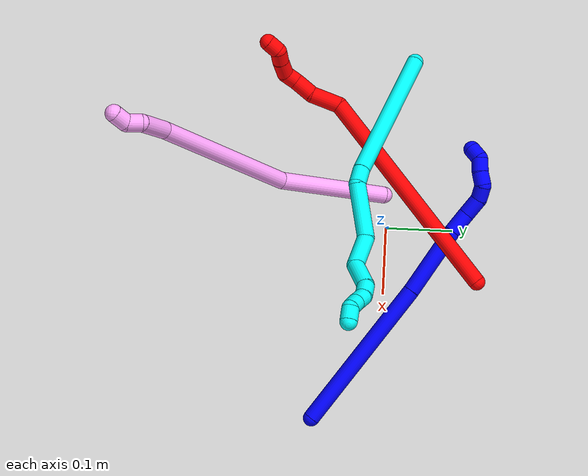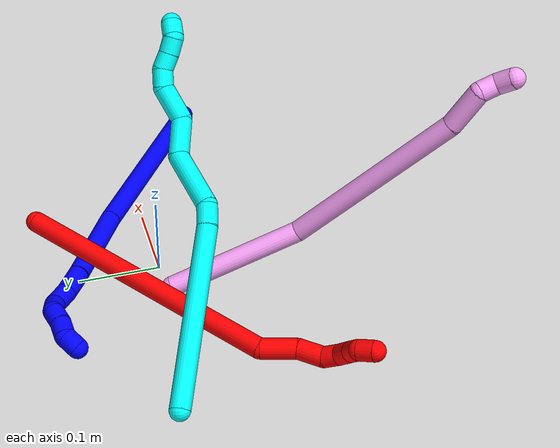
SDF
<sdf version="1.7">
 <world name="default">
  <plugin name="TubeGeneratorPlugin" filename="libtube_generator_plugin.so"/>
  <model name="photoneo_s_sensor">
   <static>1</static>
   <pose>0 0 2 1.57079 1.57079 3.14159</pose>
   <link name="link">
    <inertial><mass>0.1</mass></inertial>
    <sensor name="sensor" type="depth">
     <update_rate>30</update_rate>
     <camera>
      <horizontal_fov>1.22</horizontal_fov>
      <image><width>1920</width><height>1200</height><format>B8G8R8</format></image>
      <clip><near>0.1</near><far>4</far></clip>
      <depth_camera><output>points</output></depth_camera>
     </camera>
     <plugin name="camera_plugin" filename="libgazebo_ros_depth_camera.so">
      <baseline>0.2</baseline>
      <alwaysOn>1</alwaysOn>
      <updateRate>0.0</updateRate>
      <cameraName>camera_ir</cameraName>
      <imageTopicName>/camera/color/image_raw</imageTopicName>
      <cameraInfoTopicName>/camera/color/camera_info</cameraInfoTopicName>
      <depthImageTopicName>/camera/depth/image_raw</depthImageTopicName>
      <depthImageCameraInfoTopicName>/camera/depth/camera_info</depthImageCameraInfoTopicName>
      <pointCloudTopicName>/camera/depth/points</pointCloudTopicName>
      <frameName>fr_optical</frameName>
      <pointCloudCutoff>0.1</pointCloudCutoff>
      <pointCloudCutoffMax>2.0</pointCloudCutoffMax>
      <distortionK1>0</distortionK1>
      <distortionK2>0</distortionK2>
      <distortionK3>0</distortionK3>
      <distortionT1>0</distortionT1>
      <distortionT2>0</distortionT2>
      <CxPrime>0</CxPrime>
      <Cx>0</Cx>
      <Cy>0</Cy>
      <focalLength>0</focalLength>
      <hackBaseline>0</hackBaseline>
     </plugin>
    </sensor>
   </link>
  </model>
  <gravity>0 0 -9.8</gravity>
  <magnetic_field>6e-06 2.3e-05 -4.2e-05</magnetic_field>
  <atmosphere type="adiabatic"/>
  <physics name="default_physics" default="0" type="ode">
   <max_step_size>0.003</max_step_size>
   <real_time_factor>1</real_time_factor>
   <real_time_update_rate>1000</real_time_update_rate>
   <max_contacts>10000</max_contacts>
   <ode>
    <solver>
     <type>quick</type>
     <iters>100</iters>
     <sor>1.3</sor>
     <use_dynamic_moi_rescaling>0</use_dynamic_moi_rescaling>
    </solver>
    <constraints>
     <contact_max_correcting_vel>0</contact_max_correcting_vel>
     <contact_surface_layer>0.001</contact_surface_layer>
     <cfm>0</cfm>
     <erp>0.2</erp>
    </constraints>
   </ode>
  </physics>
  <scene><ambient>0.4 0.4 0.4 1</ambient><background>0.7 0.7 0.7 1</background><shadows>0</shadows></scene>
  <audio><device>default</device></audio>
  <spherical_coordinates>
   <surface_model>EARTH_WGS84</surface_model>
   <latitude_deg>0</latitude_deg>
   <longitude_deg>0</longitude_deg>
   <elevation>0</elevation>
   <heading_deg>0</heading_deg>
  </spherical_coordinates>
  <model name="bin">
   <static>1</static>
   <link name="bottom">
    <collision name="collision-bottom">
     <pose>0 0 -0.01 0 -0 0</pose>
     <geometry><box><size>0.8 0.6 0.02</size></box></geometry>
     <surface>
      <friction><ode><mu>100</mu><mu2>100</mu2></ode></friction>
      <contact><collide_bitmask>65535</collide_bitmask></contact>
     </surface>
    </collision>
   </link>
   <link name="west_wall">
    <collision name="collision-west_wall">
     <pose>-0.41 0 0.1 0 -0 0</pose>
     <geometry><box><size>0.02 0.6 0.2</size></box></geometry>
     <surface>
      <friction><ode><mu>100</mu><mu2>100</mu2></ode></friction>
      <contact><collide_bitmask>65535</collide_bitmask></contact>
     </surface>
    </collision>
   </link>
   <link name="east_wall">
    <collision name="collision-east_wall">
     <pose>0.41 0 0.1 0 -0 0</pose>
     <geometry><box><size>0.02 0.6 0.2</size></box></geometry>
     <surface>
      <friction><ode><mu>100</mu><mu2>100</mu2></ode></friction>
      <contact><collide_bitmask>65535</collide_bitmask></contact>
     </surface>
    </collision>
   </link>
   <link name="south_wall">
    <collision name="collision-south_wall">
     <pose>0 -0.31 0.1 0 -0 0</pose>
     <geometry><box><size>0.8 0.02 0.2</size></box></geometry>
     <surface>
      <friction><ode><mu>100</mu><mu2>100</mu2></ode></friction>
      <contact><collide_bitmask>65535</collide_bitmask></contact>
     </surface>
    </collision>
   </link>
   <link name="north_wall">
    <collision name="collision-north_wall">
     <pose>0 0.31 0.1 0 -0 0</pose>
     <geometry><box><size>0.8 0.02 0.2</size></box></geometry>
     <surface>
      <friction><ode><mu>100</mu><mu2>100</mu2></ode></friction>
      <contact><collide_bitmask>65535</collide_bitmask></contact>
     </surface>
    </collision>
   </link>
  </model>
  <model name="1">
   <static>0</static>
   <link name="1">
    <collision name="collision-cylinder-e_1_1_4">
     <pose>-0.067783 0.054156 -0.08533 -2.57607 -0.590778 1.61701</pose>
     <geometry><cylinder><radius>0.0125</radius><length>0.243381</length></cylinder></geometry>
     <surface>
      <friction><ode><mu>1.16</mu><mu2>1.16</mu2><slip1>0</slip1><slip2>0</slip2></ode></friction>
      <contact><ode><kp>1e+06</kp><kd>1</kd><max_vel>0</max_vel><min_depth>0.001</min_depth></ode></contact>
     </surface>
    </collision>
    <visual name="visual-cylinder-e_1_1_4">
     <pose>-0.067783 0.054156 -0.08533 -2.57607 -0.590778 1.61701</pose>
     <geometry><cylinder><radius>0.0125</radius><length>0.243381</length></cylinder></geometry>
     <material><ambient>0 0 1 1</ambient></material>
    </visual>
    <collision name="collision-cylinder-e_2_4_5">
     <pose>-0.167176 0.129395 -0.209231 -2.64135 -0.623451 1.80089</pose>
     <geometry><cylinder><radius>0.0125</radius><length>0.108285</length></cylinder></geometry>
     <surface>
      <friction><ode><mu>1.16</mu><mu2>1.16</mu2><slip1>0</slip1><slip2>0</slip2></ode></friction>
      <contact><ode><kp>1e+06</kp><kd>1</kd><max_vel>0</max_vel><min_depth>0.001</min_depth></ode></contact>
     </surface>
    </collision>
    <visual name="visual-cylinder-e_2_4_5">
     <pose>-0.167176 0.129395 -0.209231 -2.64135 -0.623451 1.80089</pose>
     <geometry><cylinder><radius>0.0125</radius><length>0.108285</length></cylinder></geometry>
     <material><ambient>0 0 1 1</ambient></material>
    </visual>
    <collision name="collision-cylinder-e_3_5_6">
     <pose>-0.207443 0.157867 -0.260567 -2.61694 -0.530773 1.58295</pose>
     <geometry><cylinder><radius>0.0125</radius><length>0.034206</length></cylinder></geometry>
     <surface>
      <friction><ode><mu>1.16</mu><mu2>1.16</mu2><slip1>0</slip1><slip2>0</slip2></ode></friction>
      <contact><ode><kp>1e+06</kp><kd>1</kd><max_vel>0</max_vel><min_depth>0.001</min_depth></ode></contact>
     </surface>
    </collision>
    <visual name="visual-cylinder-e_3_5_6">
     <pose>-0.207443 0.157867 -0.260567 -2.61694 -0.530773 1.58295</pose>
     <geometry><cylinder><radius>0.0125</radius><length>0.034206</length></cylinder></geometry>
     <material><ambient>0 0 1 1</ambient></material>
    </visual>
    <collision name="collision-cylinder-e_4_6_7">
     <pose>-0.225524 0.172991 -0.281856 -2.40461 -0.686013 1.49279</pose>
     <geometry><cylinder><radius>0.0125</radius><length>0.029751</length></cylinder></geometry>
     <surface>
      <friction><ode><mu>1.16</mu><mu2>1.16</mu2><slip1>0</slip1><slip2>0</slip2></ode></friction>
      <contact><ode><kp>1e+06</kp><kd>1</kd><max_vel>0</max_vel><min_depth>0.001</min_depth></ode></contact>
     </surface>
    </collision>
    <visual name="visual-cylinder-e_4_6_7">
     <pose>-0.225524 0.172991 -0.281856 -2.40461 -0.686013 1.49279</pose>
     <geometry><cylinder><radius>0.0125</radius><length>0.029751</length></cylinder></geometry>
     <material><ambient>0 0 1 1</ambient></material>
    </visual>
    <collision name="collision-cylinder-e_5_7_8">
     <pose>-0.245063 0.183351 -0.294414 -2.56475 -1.12669 2.26329</pose>
     <geometry><cylinder><radius>0.0125</radius><length>0.022407</length></cylinder></geometry>
     <surface>
      <friction><ode><mu>1.16</mu><mu2>1.16</mu2><slip1>0</slip1><slip2>0</slip2></ode></friction>
      <contact><ode><kp>1e+06</kp><kd>1</kd><max_vel>0</max_vel><min_depth>0.001</min_depth></ode></contact>
     </surface>
    </collision>
    <visual name="visual-cylinder-e_5_7_8">
     <pose>-0.245063 0.183351 -0.294414 -2.56475 -1.12669 2.26329</pose>
     <geometry><cylinder><radius>0.0125</radius><length>0.022407</length></cylinder></geometry>
     <material><ambient>0 0 1 1</ambient></material>
    </visual>
    <collision name="collision-cylinder-e_6_8_9">
     <pose>-0.263098 0.182261 -0.304099 2.55993 -0.863925 -1.98986</pose>
     <geometry><cylinder><radius>0.0125</radius><length>0.020826</length></cylinder></geometry>
     <surface>
      <friction><ode><mu>1.16</mu><mu2>1.16</mu2><slip1>0</slip1><slip2>0</slip2></ode></friction>
      <contact><ode><kp>1e+06</kp><kd>1</kd><max_vel>0</max_vel><min_depth>0.001</min_depth></ode></contact>
     </surface>
    </collision>
    <visual name="visual-cylinder-e_6_8_9">
     <pose>-0.263098 0.182261 -0.304099 2.55993 -0.863925 -1.98986</pose>
     <geometry><cylinder><radius>0.0125</radius><length>0.020826</length></cylinder></geometry>
     <material><ambient>0 0 1 1</ambient></material>
    </visual>
    <collision name="collision-cylinder-e_7_9_10">
     <pose>-0.278428 0.176272 -0.316689 2.82498 -0.792887 -2.41291</pose>
     <geometry><cylinder><radius>0.0125</radius><length>0.02081</length></cylinder></geometry>
     <surface>
      <friction><ode><mu>1.16</mu><mu2>1.16</mu2><slip1>0</slip1><slip2>0</slip2></ode></friction>
      <contact><ode><kp>1e+06</kp><kd>1</kd><max_vel>0</max_vel><min_depth>0.001</min_depth></ode></contact>
     </surface>
    </collision>
    <visual name="visual-cylinder-e_7_9_10">
     <pose>-0.278428 0.176272 -0.316689 2.82498 -0.792887 -2.41291</pose>
     <geometry><cylinder><radius>0.0125</radius><length>0.02081</length></cylinder></geometry>
     <material><ambient>0 0 1 1</ambient></material>
    </visual>
    <collision name="collision-cylinder-e_8_10_2">
     <pose>-0.289672 0.166125 -0.328796 2.15164 -0.386401 -0.695415</pose>
     <geometry><cylinder><radius>0.0125</radius><length>0.020336</length></cylinder></geometry>
     <surface>
      <friction><ode><mu>1.16</mu><mu2>1.16</mu2><slip1>0</slip1><slip2>0</slip2></ode></friction>
      <contact><ode><kp>1e+06</kp><kd>1</kd><max_vel>0</max_vel><min_depth>0.001</min_depth></ode></contact>
     </surface>
    </collision>
    <visual name="visual-cylinder-e_8_10_2">
     <pose>-0.289672 0.166125 -0.328796 2.15164 -0.386401 -0.695415</pose>
     <geometry><cylinder><radius>0.0125</radius><length>0.020336</length></cylinder></geometry>
     <material><ambient>0 0 1 1</ambient></material>
    </visual>
    <collision name="collision-sphere-2">
     <pose>-0.293504 0.158251 -0.333964 0 -0 0</pose>
     <geometry><sphere><radius>0.0125</radius></sphere></geometry>
     <surface>
      <friction><ode><mu>1.16</mu><mu2>1.16</mu2><slip1>0</slip1><slip2>0</slip2></ode></friction>
      <contact><ode><kp>1e+06</kp><kd>1</kd><max_vel>0</max_vel><min_depth>0.001</min_depth></ode></contact>
     </surface>
    </collision>
    <visual name="visual-sphere-2">
     <pose>-0.293504 0.158251 -0.333964 0 -0 0</pose>
     <geometry><sphere><radius>0.0125</radius></sphere></geometry>
     <material><ambient>0 0 1 1</ambient></material>
    </visual>
    <collision name="collision-sphere-10">
     <pose>-0.28584 0.173999 -0.323628 0 -0 0</pose>
     <geometry><sphere><radius>0.0125</radius></sphere></geometry>
     <surface>
      <friction><ode><mu>1.16</mu><mu2>1.16</mu2><slip1>0</slip1><slip2>0</slip2></ode></friction>
      <contact><ode><kp>1e+06</kp><kd>1</kd><max_vel>0</max_vel><min_depth>0.001</min_depth></ode></contact>
     </surface>
    </collision>
    <visual name="visual-sphere-10">
     <pose>-0.28584 0.173999 -0.323628 0 -0 0</pose>
     <geometry><sphere><radius>0.0125</radius></sphere></geometry>
     <material><ambient>0 0 1 1</ambient></material>
    </visual>
    <collision name="collision-sphere-9">
     <pose>-0.271016 0.178546 -0.30975 0 -0 0</pose>
     <geometry><sphere><radius>0.0125</radius></sphere></geometry>
     <surface>
      <friction><ode><mu>1.16</mu><mu2>1.16</mu2><slip1>0</slip1><slip2>0</slip2></ode></friction>
      <contact><ode><kp>1e+06</kp><kd>1</kd><max_vel>0</max_vel><min_depth>0.001</min_depth></ode></contact>
     </surface>
    </collision>
    <visual name="visual-sphere-9">
     <pose>-0.271016 0.178546 -0.30975 0 -0 0</pose>
     <geometry><sphere><radius>0.0125</radius></sphere></geometry>
     <material><ambient>0 0 1 1</ambient></material>
    </visual>
    <collision name="collision-sphere-4">
     <pose>-0.135565 0.108312 -0.17066 0 -0 0</pose>
     <geometry><sphere><radius>0.0125</radius></sphere></geometry>
     <surface>
      <friction><ode><mu>1.16</mu><mu2>1.16</mu2><slip1>0</slip1><slip2>0</slip2></ode></friction>
      <contact><ode><kp>1e+06</kp><kd>1</kd><max_vel>0</max_vel><min_depth>0.001</min_depth></ode></contact>
     </surface>
    </collision>
    <visual name="visual-sphere-4">
     <pose>-0.135565 0.108312 -0.17066 0 -0 0</pose>
     <geometry><sphere><radius>0.0125</radius></sphere></geometry>
     <material><ambient>0 0 1 1</ambient></material>
    </visual>
    <collision name="collision-sphere-1">
     <geometry><sphere><radius>0.0125</radius></sphere></geometry>
     <surface>
      <friction><ode><mu>1.16</mu><mu2>1.16</mu2><slip1>0</slip1><slip2>0</slip2></ode></friction>
      <contact><ode><kp>1e+06</kp><kd>1</kd><max_vel>0</max_vel><min_depth>0.001</min_depth></ode></contact>
     </surface>
    </collision>
    <visual name="visual-sphere-1">
     <geometry><sphere><radius>0.0125</radius></sphere></geometry>
     <material><ambient>0 0 1 1</ambient></material>
    </visual>
    <collision name="collision-sphere-8">
     <pose>-0.25518 0.185977 -0.298449 0 -0 0</pose>
     <geometry><sphere><radius>0.0125</radius></sphere></geometry>
     <surface>
      <friction><ode><mu>1.16</mu><mu2>1.16</mu2><slip1>0</slip1><slip2>0</slip2></ode></friction>
      <contact><ode><kp>1e+06</kp><kd>1</kd><max_vel>0</max_vel><min_depth>0.001</min_depth></ode></contact>
     </surface>
    </collision>
    <visual name="visual-sphere-8">
     <pose>-0.25518 0.185977 -0.298449 0 -0 0</pose>
     <geometry><sphere><radius>0.0125</radius></sphere></geometry>
     <material><ambient>0 0 1 1</ambient></material>
    </visual>
    <collision name="collision-sphere-5">
     <pose>-0.198786 0.150478 -0.247801 0 -0 0</pose>
     <geometry><sphere><radius>0.0125</radius></sphere></geometry>
     <surface>
      <friction><ode><mu>1.16</mu><mu2>1.16</mu2><slip1>0</slip1><slip2>0</slip2></ode></friction>
      <contact><ode><kp>1e+06</kp><kd>1</kd><max_vel>0</max_vel><min_depth>0.001</min_depth></ode></contact>
     </surface>
    </collision>
    <visual name="visual-sphere-5">
     <pose>-0.198786 0.150478 -0.247801 0 -0 0</pose>
     <geometry><sphere><radius>0.0125</radius></sphere></geometry>
     <material><ambient>0 0 1 1</ambient></material>
    </visual>
    <collision name="collision-sphere-6">
     <pose>-0.216101 0.165255 -0.273333 0 -0 0</pose>
     <geometry><sphere><radius>0.0125</radius></sphere></geometry>
     <surface>
      <friction><ode><mu>1.16</mu><mu2>1.16</mu2><slip1>0</slip1><slip2>0</slip2></ode></friction>
      <contact><ode><kp>1e+06</kp><kd>1</kd><max_vel>0</max_vel><min_depth>0.001</min_depth></ode></contact>
     </surface>
    </collision>
    <visual name="visual-sphere-6">
     <pose>-0.216101 0.165255 -0.273333 0 -0 0</pose>
     <geometry><sphere><radius>0.0125</radius></sphere></geometry>
     <material><ambient>0 0 1 1</ambient></material>
    </visual>
    <collision name="collision-sphere-7">
     <pose>-0.234947 0.180726 -0.290379 0 -0 0</pose>
     <geometry><sphere><radius>0.0125</radius></sphere></geometry>
     <surface>
      <friction><ode><mu>1.16</mu><mu2>1.16</mu2><slip1>0</slip1><slip2>0</slip2></ode></friction>
      <contact><ode><kp>1e+06</kp><kd>1</kd><max_vel>0</max_vel><min_depth>0.001</min_depth></ode></contact>
     </surface>
    </collision>
    <visual name="visual-sphere-7">
     <pose>-0.234947 0.180726 -0.290379 0 -0 0</pose>
     <geometry><sphere><radius>0.0125</radius></sphere></geometry>
     <material><ambient>0 0 1 1</ambient></material>
    </visual>
    <inertial>
     <pose>-0.14212 0.105378 -0.173858 0 -0 0</pose>
     <mass>0.5</mass>
     <inertia>
      <ixx>0.001006</ixx>
      <ixy>0</ixy>
      <ixz>0</ixz>
      <iyy>0.001575</iyy>
      <iyz>0</iyz>
      <izz>0.000138</izz>
     </inertia>
    </inertial>
   </link>
   <pose>0.290348 -0.099834 0.011747 0.511336 0.628896 0.198643</pose>
  </model>
  <model name="2">
   <static>0</static>
   <link name="2">
    <collision name="collision-cylinder-e_1_1_4">
     <pose>-0.055982 -0.043912 0.152954 0.279571 -0.338272 -0.048046</pose>
     <geometry><cylinder><radius>0.0125</radius><length>0.337384</length></cylinder></geometry>
     <surface>
      <friction><ode><mu>1.16</mu><mu2>1.16</mu2><slip1>0</slip1><slip2>0</slip2></ode></friction>
      <contact><ode><kp>1e+06</kp><kd>1</kd><max_vel>0</max_vel><min_depth>0.001</min_depth></ode></contact>
     </surface>
    </collision>
    <visual name="visual-cylinder-e_1_1_4">
     <pose>-0.055982 -0.043912 0.152954 0.279571 -0.338272 -0.048046</pose>
     <geometry><cylinder><radius>0.0125</radius><length>0.337384</length></cylinder></geometry>
     <material><ambient>1 0 0 1</ambient></material>
    </visual>
    <collision name="collision-cylinder-e_2_4_5">
     <pose>-0.106949 -0.094376 0.326306 0.310843 0.229925 0.036181</pose>
     <geometry><cylinder><radius>0.0125</radius><length>0.044009</length></cylinder></geometry>
     <surface>
      <friction><ode><mu>1.16</mu><mu2>1.16</mu2><slip1>0</slip1><slip2>0</slip2></ode></friction>
      <contact><ode><kp>1e+06</kp><kd>1</kd><max_vel>0</max_vel><min_depth>0.001</min_depth></ode></contact>
     </surface>
    </collision>
    <visual name="visual-cylinder-e_2_4_5">
     <pose>-0.106949 -0.094376 0.326306 0.310843 0.229925 0.036181</pose>
     <geometry><cylinder><radius>0.0125</radius><length>0.044009</length></cylinder></geometry>
     <material><ambient>1 0 0 1</ambient></material>
    </visual>
    <collision name="collision-cylinder-e_3_5_6">
     <pose>-0.103866 -0.105902 0.361757 0.319063 -0.121256 -0.019533</pose>
     <geometry><cylinder><radius>0.0125</radius><length>0.031941</length></cylinder></geometry>
     <surface>
      <friction><ode><mu>1.16</mu><mu2>1.16</mu2><slip1>0</slip1><slip2>0</slip2></ode></friction>
      <contact><ode><kp>1e+06</kp><kd>1</kd><max_vel>0</max_vel><min_depth>0.001</min_depth></ode></contact>
     </surface>
    </collision>
    <visual name="visual-cylinder-e_3_5_6">
     <pose>-0.103866 -0.105902 0.361757 0.319063 -0.121256 -0.019533</pose>
     <geometry><cylinder><radius>0.0125</radius><length>0.031941</length></cylinder></geometry>
     <material><ambient>1 0 0 1</ambient></material>
    </visual>
    <collision name="collision-cylinder-e_4_6_7">
     <pose>-0.104155 -0.109581 0.386975 -0.126574 0.158902 -0.010091</pose>
     <geometry><cylinder><radius>0.0125</radius><length>0.020754</length></cylinder></geometry>
     <surface>
      <friction><ode><mu>1.16</mu><mu2>1.16</mu2><slip1>0</slip1><slip2>0</slip2></ode></friction>
      <contact><ode><kp>1e+06</kp><kd>1</kd><max_vel>0</max_vel><min_depth>0.001</min_depth></ode></contact>
     </surface>
    </collision>
    <visual name="visual-cylinder-e_4_6_7">
     <pose>-0.104155 -0.109581 0.386975 -0.126574 0.158902 -0.010091</pose>
     <geometry><cylinder><radius>0.0125</radius><length>0.020754</length></cylinder></geometry>
     <material><ambient>1 0 0 1</ambient></material>
    </visual>
    <collision name="collision-cylinder-e_5_7_8">
     <pose>-0.104424 -0.1006 0.407256 -0.649827 -0.149232 0.050352</pose>
     <geometry><cylinder><radius>0.0125</radius><length>0.025699</length></cylinder></geometry>
     <surface>
      <friction><ode><mu>1.16</mu><mu2>1.16</mu2><slip1>0</slip1><slip2>0</slip2></ode></friction>
      <contact><ode><kp>1e+06</kp><kd>1</kd><max_vel>0</max_vel><min_depth>0.001</min_depth></ode></contact>
     </surface>
    </collision>
    <visual name="visual-cylinder-e_5_7_8">
     <pose>-0.104424 -0.1006 0.407256 -0.649827 -0.149232 0.050352</pose>
     <geometry><cylinder><radius>0.0125</radius><length>0.025699</length></cylinder></geometry>
     <material><ambient>1 0 0 1</ambient></material>
    </visual>
    <collision name="collision-cylinder-e_6_8_9">
     <pose>-0.108576 -0.086412 0.424674 -0.727392 -0.225461 0.086129</pose>
     <geometry><cylinder><radius>0.0125</radius><length>0.020058</length></cylinder></geometry>
     <surface>
      <friction><ode><mu>1.16</mu><mu2>1.16</mu2><slip1>0</slip1><slip2>0</slip2></ode></friction>
      <contact><ode><kp>1e+06</kp><kd>1</kd><max_vel>0</max_vel><min_depth>0.001</min_depth></ode></contact>
     </surface>
    </collision>
    <visual name="visual-cylinder-e_6_8_9">
     <pose>-0.108576 -0.086412 0.424674 -0.727392 -0.225461 0.086129</pose>
     <geometry><cylinder><radius>0.0125</radius><length>0.020058</length></cylinder></geometry>
     <material><ambient>1 0 0 1</ambient></material>
    </visual>
    <collision name="collision-cylinder-e_7_9_2">
     <pose>-0.110838 -0.080068 0.442052 0.01549 -0.001945 -1.5e-05</pose>
     <geometry><cylinder><radius>0.0125</radius><length>0.020155</length></cylinder></geometry>
     <surface>
      <friction><ode><mu>1.16</mu><mu2>1.16</mu2><slip1>0</slip1><slip2>0</slip2></ode></friction>
      <contact><ode><kp>1e+06</kp><kd>1</kd><max_vel>0</max_vel><min_depth>0.001</min_depth></ode></contact>
     </surface>
    </collision>
    <visual name="visual-cylinder-e_7_9_2">
     <pose>-0.110838 -0.080068 0.442052 0.01549 -0.001945 -1.5e-05</pose>
     <geometry><cylinder><radius>0.0125</radius><length>0.020155</length></cylinder></geometry>
     <material><ambient>1 0 0 1</ambient></material>
    </visual>
    <collision name="collision-sphere-2">
     <pose>-0.110857 -0.080224 0.452128 0 -0 0</pose>
     <geometry><sphere><radius>0.0125</radius></sphere></geometry>
     <surface>
      <friction><ode><mu>1.16</mu><mu2>1.16</mu2><slip1>0</slip1><slip2>0</slip2></ode></friction>
      <contact><ode><kp>1e+06</kp><kd>1</kd><max_vel>0</max_vel><min_depth>0.001</min_depth></ode></contact>
     </surface>
    </collision>
    <visual name="visual-sphere-2">
     <pose>-0.110857 -0.080224 0.452128 0 -0 0</pose>
     <geometry><sphere><radius>0.0125</radius></sphere></geometry>
     <material><ambient>1 0 0 1</ambient></material>
    </visual>
    <collision name="collision-sphere-9">
     <pose>-0.110818 -0.079912 0.431975 0 -0 0</pose>
     <geometry><sphere><radius>0.0125</radius></sphere></geometry>
     <surface>
      <friction><ode><mu>1.16</mu><mu2>1.16</mu2><slip1>0</slip1><slip2>0</slip2></ode></friction>
      <contact><ode><kp>1e+06</kp><kd>1</kd><max_vel>0</max_vel><min_depth>0.001</min_depth></ode></contact>
     </surface>
    </collision>
    <visual name="visual-sphere-9">
     <pose>-0.110818 -0.079912 0.431975 0 -0 0</pose>
     <geometry><sphere><radius>0.0125</radius></sphere></geometry>
     <material><ambient>1 0 0 1</ambient></material>
    </visual>
    <collision name="collision-sphere-4">
     <pose>-0.111964 -0.087823 0.305907 0 -0 0</pose>
     <geometry><sphere><radius>0.0125</radius></sphere></geometry>
     <surface>
      <friction><ode><mu>1.16</mu><mu2>1.16</mu2><slip1>0</slip1><slip2>0</slip2></ode></friction>
      <contact><ode><kp>1e+06</kp><kd>1</kd><max_vel>0</max_vel><min_depth>0.001</min_depth></ode></contact>
     </surface>
    </collision>
    <visual name="visual-sphere-4">
     <pose>-0.111964 -0.087823 0.305907 0 -0 0</pose>
     <geometry><sphere><radius>0.0125</radius></sphere></geometry>
     <material><ambient>1 0 0 1</ambient></material>
    </visual>
    <collision name="collision-sphere-1">
     <geometry><sphere><radius>0.0125</radius></sphere></geometry>
     <surface>
      <friction><ode><mu>1.16</mu><mu2>1.16</mu2><slip1>0</slip1><slip2>0</slip2></ode></friction>
      <contact><ode><kp>1e+06</kp><kd>1</kd><max_vel>0</max_vel><min_depth>0.001</min_depth></ode></contact>
     </surface>
    </collision>
    <visual name="visual-sphere-1">
     <geometry><sphere><radius>0.0125</radius></sphere></geometry>
     <material><ambient>1 0 0 1</ambient></material>
    </visual>
    <collision name="collision-sphere-8">
     <pose>-0.106334 -0.092912 0.417373 0 -0 0</pose>
     <geometry><sphere><radius>0.0125</radius></sphere></geometry>
     <surface>
      <friction><ode><mu>1.16</mu><mu2>1.16</mu2><slip1>0</slip1><slip2>0</slip2></ode></friction>
      <contact><ode><kp>1e+06</kp><kd>1</kd><max_vel>0</max_vel><min_depth>0.001</min_depth></ode></contact>
     </surface>
    </collision>
    <visual name="visual-sphere-8">
     <pose>-0.106334 -0.092912 0.417373 0 -0 0</pose>
     <geometry><sphere><radius>0.0125</radius></sphere></geometry>
     <material><ambient>1 0 0 1</ambient></material>
    </visual>
    <collision name="collision-sphere-5">
     <pose>-0.101934 -0.100929 0.346704 0 -0 0</pose>
     <geometry><sphere><radius>0.0125</radius></sphere></geometry>
     <surface>
      <friction><ode><mu>1.16</mu><mu2>1.16</mu2><slip1>0</slip1><slip2>0</slip2></ode></friction>
      <contact><ode><kp>1e+06</kp><kd>1</kd><max_vel>0</max_vel><min_depth>0.001</min_depth></ode></contact>
     </surface>
    </collision>
    <visual name="visual-sphere-5">
     <pose>-0.101934 -0.100929 0.346704 0 -0 0</pose>
     <geometry><sphere><radius>0.0125</radius></sphere></geometry>
     <material><ambient>1 0 0 1</ambient></material>
    </visual>
    <collision name="collision-sphere-6">
     <pose>-0.105797 -0.110875 0.37681 0 -0 0</pose>
     <geometry><sphere><radius>0.0125</radius></sphere></geometry>
     <surface>
      <friction><ode><mu>1.16</mu><mu2>1.16</mu2><slip1>0</slip1><slip2>0</slip2></ode></friction>
      <contact><ode><kp>1e+06</kp><kd>1</kd><max_vel>0</max_vel><min_depth>0.001</min_depth></ode></contact>
     </surface>
    </collision>
    <visual name="visual-sphere-6">
     <pose>-0.105797 -0.110875 0.37681 0 -0 0</pose>
     <geometry><sphere><radius>0.0125</radius></sphere></geometry>
     <material><ambient>1 0 0 1</ambient></material>
    </visual>
    <collision name="collision-sphere-7">
     <pose>-0.102513 -0.108288 0.397139 0 -0 0</pose>
     <geometry><sphere><radius>0.0125</radius></sphere></geometry>
     <surface>
      <friction><ode><mu>1.16</mu><mu2>1.16</mu2><slip1>0</slip1><slip2>0</slip2></ode></friction>
      <contact><ode><kp>1e+06</kp><kd>1</kd><max_vel>0</max_vel><min_depth>0.001</min_depth></ode></contact>
     </surface>
    </collision>
    <visual name="visual-sphere-7">
     <pose>-0.102513 -0.108288 0.397139 0 -0 0</pose>
     <geometry><sphere><radius>0.0125</radius></sphere></geometry>
     <material><ambient>1 0 0 1</ambient></material>
    </visual>
    <inertial>
     <pose>-0.072337 -0.061115 0.226889 0 -0 0</pose>
     <mass>0.5</mass>
     <inertia>
      <ixx>0.002893</ixx>
      <ixy>0</ixy>
      <ixz>0</ixz>
      <iyy>0.002966</iyy>
      <iyz>0</iyz>
      <izz>0.001938</izz>
     </inertia>
    </inertial>
   </link>
   <pose>0.074431 0.136942 0.045026 1.2825 -0.324474 -0.547927</pose>
  </model>
  <model name="3">
   <static>0</static>
   <link name="3">
    <collision name="collision-cylinder-e_1_1_4">
     <pose>0.063753 -0.028415 0.083922 0.326476 0.623722 0.106095</pose>
     <geometry><cylinder><radius>0.0125</radius><length>0.218311</length></cylinder></geometry>
     <surface>
      <friction><ode><mu>1.16</mu><mu2>1.16</mu2><slip1>0</slip1><slip2>0</slip2></ode></friction>
      <contact><ode><kp>1e+06</kp><kd>1</kd><max_vel>0</max_vel><min_depth>0.001</min_depth></ode></contact>
     </surface>
    </collision>
    <visual name="visual-cylinder-e_1_1_4">
     <pose>0.063753 -0.028415 0.083922 0.326476 0.623722 0.106095</pose>
     <geometry><cylinder><radius>0.0125</radius><length>0.218311</length></cylinder></geometry>
     <material><ambient>0.003922 1 0.996078 1</ambient></material>
    </visual>
    <collision name="collision-cylinder-e_2_4_5">
     <pose>0.135214 -0.058318 0.178481 0.138909 0.622445 0.044748</pose>
     <geometry><cylinder><radius>0.0125</radius><length>0.026438</length></cylinder></geometry>
     <surface>
      <friction><ode><mu>1.16</mu><mu2>1.16</mu2><slip1>0</slip1><slip2>0</slip2></ode></friction>
      <contact><ode><kp>1e+06</kp><kd>1</kd><max_vel>0</max_vel><min_depth>0.001</min_depth></ode></contact>
     </surface>
    </collision>
    <visual name="visual-cylinder-e_2_4_5">
     <pose>0.135214 -0.058318 0.178481 0.138909 0.622445 0.044748</pose>
     <geometry><cylinder><radius>0.0125</radius><length>0.026438</length></cylinder></geometry>
     <material><ambient>0.003922 1 0.996078 1</ambient></material>
    </visual>
    <collision name="collision-cylinder-e_3_5_6">
     <pose>0.172564 -0.046549 0.212564 -0.514562 0.833243 -0.231824</pose>
     <geometry><cylinder><radius>0.0125</radius><length>0.080105</length></cylinder></geometry>
     <surface>
      <friction><ode><mu>1.16</mu><mu2>1.16</mu2><slip1>0</slip1><slip2>0</slip2></ode></friction>
      <contact><ode><kp>1e+06</kp><kd>1</kd><max_vel>0</max_vel><min_depth>0.001</min_depth></ode></contact>
     </surface>
    </collision>
    <visual name="visual-cylinder-e_3_5_6">
     <pose>0.172564 -0.046549 0.212564 -0.514562 0.833243 -0.231824</pose>
     <geometry><cylinder><radius>0.0125</radius><length>0.080105</length></cylinder></geometry>
     <material><ambient>0.003922 1 0.996078 1</ambient></material>
    </visual>
    <collision name="collision-cylinder-e_4_6_7">
     <pose>0.216821 -0.037881 0.254799 0.239491 0.647071 0.080648</pose>
     <geometry><cylinder><radius>0.0125</radius><length>0.048481</length></cylinder></geometry>
     <surface>
      <friction><ode><mu>1.16</mu><mu2>1.16</mu2><slip1>0</slip1><slip2>0</slip2></ode></friction>
      <contact><ode><kp>1e+06</kp><kd>1</kd><max_vel>0</max_vel><min_depth>0.001</min_depth></ode></contact>
     </surface>
    </collision>
    <visual name="visual-cylinder-e_4_6_7">
     <pose>0.216821 -0.037881 0.254799 0.239491 0.647071 0.080648</pose>
     <geometry><cylinder><radius>0.0125</radius><length>0.048481</length></cylinder></geometry>
     <material><ambient>0.003922 1 0.996078 1</ambient></material>
    </visual>
    <collision name="collision-cylinder-e_5_7_8">
     <pose>0.236494 -0.034352 0.293169 -0.392933 0.234298 -0.046839</pose>
     <geometry><cylinder><radius>0.0125</radius><length>0.043585</length></cylinder></geometry>
     <surface>
      <friction><ode><mu>1.16</mu><mu2>1.16</mu2><slip1>0</slip1><slip2>0</slip2></ode></friction>
      <contact><ode><kp>1e+06</kp><kd>1</kd><max_vel>0</max_vel><min_depth>0.001</min_depth></ode></contact>
     </surface>
    </collision>
    <visual name="visual-cylinder-e_5_7_8">
     <pose>0.236494 -0.034352 0.293169 -0.392933 0.234298 -0.046839</pose>
     <geometry><cylinder><radius>0.0125</radius><length>0.043585</length></cylinder></geometry>
     <material><ambient>0.003922 1 0.996078 1</ambient></material>
    </visual>
    <collision name="collision-cylinder-e_6_8_9">
     <pose>0.245349 -0.027284 0.32324 0.09964 0.345609 0.017406</pose>
     <geometry><cylinder><radius>0.0125</radius><length>0.022407</length></cylinder></geometry>
     <surface>
      <friction><ode><mu>1.16</mu><mu2>1.16</mu2><slip1>0</slip1><slip2>0</slip2></ode></friction>
      <contact><ode><kp>1e+06</kp><kd>1</kd><max_vel>0</max_vel><min_depth>0.001</min_depth></ode></contact>
     </surface>
    </collision>
    <visual name="visual-cylinder-e_6_8_9">
     <pose>0.245349 -0.027284 0.32324 0.09964 0.345609 0.017406</pose>
     <geometry><cylinder><radius>0.0125</radius><length>0.022407</length></cylinder></geometry>
     <material><ambient>0.003922 1 0.996078 1</ambient></material>
    </visual>
    <collision name="collision-cylinder-e_7_9_10">
     <pose>0.250898 -0.033449 0.342331 0.53651 0.17348 0.047797</pose>
     <geometry><cylinder><radius>0.0125</radius><length>0.020321</length></cylinder></geometry>
     <surface>
      <friction><ode><mu>1.16</mu><mu2>1.16</mu2><slip1>0</slip1><slip2>0</slip2></ode></friction>
      <contact><ode><kp>1e+06</kp><kd>1</kd><max_vel>0</max_vel><min_depth>0.001</min_depth></ode></contact>
     </surface>
    </collision>
    <visual name="visual-cylinder-e_7_9_10">
     <pose>0.250898 -0.033449 0.342331 0.53651 0.17348 0.047797</pose>
     <geometry><cylinder><radius>0.0125</radius><length>0.020321</length></cylinder></geometry>
     <material><ambient>0.003922 1 0.996078 1</ambient></material>
    </visual>
    <collision name="collision-cylinder-e_8_10_11">
     <pose>0.253837 -0.042637 0.360028 0.42106 0.118371 0.025324</pose>
     <geometry><cylinder><radius>0.0125</radius><length>0.020072</length></cylinder></geometry>
     <surface>
      <friction><ode><mu>1.16</mu><mu2>1.16</mu2><slip1>0</slip1><slip2>0</slip2></ode></friction>
      <contact><ode><kp>1e+06</kp><kd>1</kd><max_vel>0</max_vel><min_depth>0.001</min_depth></ode></contact>
     </surface>
    </collision>
    <visual name="visual-cylinder-e_8_10_11">
     <pose>0.253837 -0.042637 0.360028 0.42106 0.118371 0.025324</pose>
     <geometry><cylinder><radius>0.0125</radius><length>0.020072</length></cylinder></geometry>
     <material><ambient>0.003922 1 0.996078 1</ambient></material>
    </visual>
    <collision name="collision-cylinder-e_9_11_2">
     <pose>0.261836 -0.046557 0.376631 -0.020453 0.736871 -0.007896</pose>
     <geometry><cylinder><radius>0.0125</radius><length>0.02028</length></cylinder></geometry>
     <surface>
      <friction><ode><mu>1.16</mu><mu2>1.16</mu2><slip1>0</slip1><slip2>0</slip2></ode></friction>
      <contact><ode><kp>1e+06</kp><kd>1</kd><max_vel>0</max_vel><min_depth>0.001</min_depth></ode></contact>
     </surface>
    </collision>
    <visual name="visual-cylinder-e_9_11_2">
     <pose>0.261836 -0.046557 0.376631 -0.020453 0.736871 -0.007896</pose>
     <geometry><cylinder><radius>0.0125</radius><length>0.02028</length></cylinder></geometry>
     <material><ambient>0.003922 1 0.996078 1</ambient></material>
    </visual>
    <collision name="collision-sphere-2">
     <pose>0.26865 -0.046403 0.384139 0 -0 0</pose>
     <geometry><sphere><radius>0.0125</radius></sphere></geometry>
     <surface>
      <friction><ode><mu>1.16</mu><mu2>1.16</mu2><slip1>0</slip1><slip2>0</slip2></ode></friction>
      <contact><ode><kp>1e+06</kp><kd>1</kd><max_vel>0</max_vel><min_depth>0.001</min_depth></ode></contact>
     </surface>
    </collision>
    <visual name="visual-sphere-2">
     <pose>0.26865 -0.046403 0.384139 0 -0 0</pose>
     <geometry><sphere><radius>0.0125</radius></sphere></geometry>
     <material><ambient>0.003922 1 0.996078 1</ambient></material>
    </visual>
    <collision name="collision-sphere-11">
     <pose>0.255022 -0.046711 0.369123 0 -0 0</pose>
     <geometry><sphere><radius>0.0125</radius></sphere></geometry>
     <surface>
      <friction><ode><mu>1.16</mu><mu2>1.16</mu2><slip1>0</slip1><slip2>0</slip2></ode></friction>
      <contact><ode><kp>1e+06</kp><kd>1</kd><max_vel>0</max_vel><min_depth>0.001</min_depth></ode></contact>
     </surface>
    </collision>
    <visual name="visual-sphere-11">
     <pose>0.255022 -0.046711 0.369123 0 -0 0</pose>
     <geometry><sphere><radius>0.0125</radius></sphere></geometry>
     <material><ambient>0.003922 1 0.996078 1</ambient></material>
    </visual>
    <collision name="collision-sphere-10">
     <pose>0.252652 -0.038564 0.350933 0 -0 0</pose>
     <geometry><sphere><radius>0.0125</radius></sphere></geometry>
     <surface>
      <friction><ode><mu>1.16</mu><mu2>1.16</mu2><slip1>0</slip1><slip2>0</slip2></ode></friction>
      <contact><ode><kp>1e+06</kp><kd>1</kd><max_vel>0</max_vel><min_depth>0.001</min_depth></ode></contact>
     </surface>
    </collision>
    <visual name="visual-sphere-10">
     <pose>0.252652 -0.038564 0.350933 0 -0 0</pose>
     <geometry><sphere><radius>0.0125</radius></sphere></geometry>
     <material><ambient>0.003922 1 0.996078 1</ambient></material>
    </visual>
    <collision name="collision-sphere-9">
     <pose>0.249144 -0.028333 0.333729 0 -0 0</pose>
     <geometry><sphere><radius>0.0125</radius></sphere></geometry>
     <surface>
      <friction><ode><mu>1.16</mu><mu2>1.16</mu2><slip1>0</slip1><slip2>0</slip2></ode></friction>
      <contact><ode><kp>1e+06</kp><kd>1</kd><max_vel>0</max_vel><min_depth>0.001</min_depth></ode></contact>
     </surface>
    </collision>
    <visual name="visual-sphere-9">
     <pose>0.249144 -0.028333 0.333729 0 -0 0</pose>
     <geometry><sphere><radius>0.0125</radius></sphere></geometry>
     <material><ambient>0.003922 1 0.996078 1</ambient></material>
    </visual>
    <collision name="collision-sphere-4">
     <pose>0.127507 -0.056831 0.167845 0 -0 0</pose>
     <geometry><sphere><radius>0.0125</radius></sphere></geometry>
     <surface>
      <friction><ode><mu>1.16</mu><mu2>1.16</mu2><slip1>0</slip1><slip2>0</slip2></ode></friction>
      <contact><ode><kp>1e+06</kp><kd>1</kd><max_vel>0</max_vel><min_depth>0.001</min_depth></ode></contact>
     </surface>
    </collision>
    <visual name="visual-sphere-4">
     <pose>0.127507 -0.056831 0.167845 0 -0 0</pose>
     <geometry><sphere><radius>0.0125</radius></sphere></geometry>
     <material><ambient>0.003922 1 0.996078 1</ambient></material>
    </visual>
    <collision name="collision-sphere-1">
     <geometry><sphere><radius>0.0125</radius></sphere></geometry>
     <surface>
      <friction><ode><mu>1.16</mu><mu2>1.16</mu2><slip1>0</slip1><slip2>0</slip2></ode></friction>
      <contact><ode><kp>1e+06</kp><kd>1</kd><max_vel>0</max_vel><min_depth>0.001</min_depth></ode></contact>
     </surface>
    </collision>
    <visual name="visual-sphere-1">
     <geometry><sphere><radius>0.0125</radius></sphere></geometry>
     <material><ambient>0.003922 1 0.996078 1</ambient></material>
    </visual>
    <collision name="collision-sphere-8">
     <pose>0.241553 -0.026236 0.312751 0 -0 0</pose>
     <geometry><sphere><radius>0.0125</radius></sphere></geometry>
     <surface>
      <friction><ode><mu>1.16</mu><mu2>1.16</mu2><slip1>0</slip1><slip2>0</slip2></ode></friction>
      <contact><ode><kp>1e+06</kp><kd>1</kd><max_vel>0</max_vel><min_depth>0.001</min_depth></ode></contact>
     </surface>
    </collision>
    <visual name="visual-sphere-8">
     <pose>0.241553 -0.026236 0.312751 0 -0 0</pose>
     <geometry><sphere><radius>0.0125</radius></sphere></geometry>
     <material><ambient>0.003922 1 0.996078 1</ambient></material>
    </visual>
    <collision name="collision-sphere-5">
     <pose>0.142921 -0.059805 0.189118 0 -0 0</pose>
     <geometry><sphere><radius>0.0125</radius></sphere></geometry>
     <surface>
      <friction><ode><mu>1.16</mu><mu2>1.16</mu2><slip1>0</slip1><slip2>0</slip2></ode></friction>
      <contact><ode><kp>1e+06</kp><kd>1</kd><max_vel>0</max_vel><min_depth>0.001</min_depth></ode></contact>
     </surface>
    </collision>
    <visual name="visual-sphere-5">
     <pose>0.142921 -0.059805 0.189118 0 -0 0</pose>
     <geometry><sphere><radius>0.0125</radius></sphere></geometry>
     <material><ambient>0.003922 1 0.996078 1</ambient></material>
    </visual>
    <collision name="collision-sphere-6">
     <pose>0.202208 -0.033293 0.236011 0 -0 0</pose>
     <geometry><sphere><radius>0.0125</radius></sphere></geometry>
     <surface>
      <friction><ode><mu>1.16</mu><mu2>1.16</mu2><slip1>0</slip1><slip2>0</slip2></ode></friction>
      <contact><ode><kp>1e+06</kp><kd>1</kd><max_vel>0</max_vel><min_depth>0.001</min_depth></ode></contact>
     </surface>
    </collision>
    <visual name="visual-sphere-6">
     <pose>0.202208 -0.033293 0.236011 0 -0 0</pose>
     <geometry><sphere><radius>0.0125</radius></sphere></geometry>
     <material><ambient>0.003922 1 0.996078 1</ambient></material>
    </visual>
    <collision name="collision-sphere-7">
     <pose>0.231435 -0.042469 0.273588 0 -0 0</pose>
     <geometry><sphere><radius>0.0125</radius></sphere></geometry>
     <surface>
      <friction><ode><mu>1.16</mu><mu2>1.16</mu2><slip1>0</slip1><slip2>0</slip2></ode></friction>
      <contact><ode><kp>1e+06</kp><kd>1</kd><max_vel>0</max_vel><min_depth>0.001</min_depth></ode></contact>
     </surface>
    </collision>
    <visual name="visual-sphere-7">
     <pose>0.231435 -0.042469 0.273588 0 -0 0</pose>
     <geometry><sphere><radius>0.0125</radius></sphere></geometry>
     <material><ambient>0.003922 1 0.996078 1</ambient></material>
    </visual>
    <inertial>
     <pose>0.146273 -0.035798 0.188524 0 -0 0</pose>
     <mass>0.5</mass>
     <inertia>
      <ixx>0.000852</ixx>
      <ixy>0</ixy>
      <ixz>0</ixz>
      <iyy>0.000978</iyy>
      <iyz>0</iyz>
      <izz>-0.000314</izz>
     </inertia>
    </inertial>
   </link>
   <pose>-0.252798 0.032421 0.011495 -0.116445 0.396946 -0.221617</pose>
  </model>
  <model name="4">
   <static>0</static>
   <link name="4">
    <collision name="collision-cylinder-e_1_1_4">
     <pose>-0.002824 -0.02024 0.080852 0.245294 -0.033872 -0.004176</pose>
     <geometry><cylinder><radius>0.0125</radius><length>0.16679</length></cylinder></geometry>
     <surface>
      <friction><ode><mu>1.16</mu><mu2>1.16</mu2><slip1>0</slip1><slip2>0</slip2></ode></friction>
      <contact><ode><kp>1e+06</kp><kd>1</kd><max_vel>0</max_vel><min_depth>0.001</min_depth></ode></contact>
     </surface>
    </collision>
    <visual name="visual-cylinder-e_1_1_4">
     <pose>-0.002824 -0.02024 0.080852 0.245294 -0.033872 -0.004176</pose>
     <geometry><cylinder><radius>0.0125</radius><length>0.16679</length></cylinder></geometry>
     <material><ambient>1 0.65098 0.996078 1</ambient></material>
    </visual>
    <collision name="collision-cylinder-e_2_4_5">
     <pose>0.002759 -0.11381 0.254772 0.667331 0.070842 0.024565</pose>
     <geometry><cylinder><radius>0.0125</radius><length>0.237568</length></cylinder></geometry>
     <surface>
      <friction><ode><mu>1.16</mu><mu2>1.16</mu2><slip1>0</slip1><slip2>0</slip2></ode></friction>
      <contact><ode><kp>1e+06</kp><kd>1</kd><max_vel>0</max_vel><min_depth>0.001</min_depth></ode></contact>
     </surface>
    </collision>
    <visual name="visual-cylinder-e_2_4_5">
     <pose>0.002759 -0.11381 0.254772 0.667331 0.070842 0.024565</pose>
     <geometry><cylinder><radius>0.0125</radius><length>0.237568</length></cylinder></geometry>
     <material><ambient>1 0.65098 0.996078 1</ambient></material>
    </visual>
    <collision name="collision-cylinder-e_3_5_6">
     <pose>0.009106 -0.206612 0.36448 0.863648 -0.080303 -0.037022</pose>
     <geometry><cylinder><radius>0.0125</radius><length>0.051392</length></cylinder></geometry>
     <surface>
      <friction><ode><mu>1.16</mu><mu2>1.16</mu2><slip1>0</slip1><slip2>0</slip2></ode></friction>
      <contact><ode><kp>1e+06</kp><kd>1</kd><max_vel>0</max_vel><min_depth>0.001</min_depth></ode></contact>
     </surface>
    </collision>
    <visual name="visual-cylinder-e_3_5_6">
     <pose>0.009106 -0.206612 0.36448 0.863648 -0.080303 -0.037022</pose>
     <geometry><cylinder><radius>0.0125</radius><length>0.051392</length></cylinder></geometry>
     <material><ambient>1 0.65098 0.996078 1</ambient></material>
    </visual>
    <collision name="collision-cylinder-e_4_6_7">
     <pose>0.00542 -0.227713 0.391697 0.152905 -0.150704 -0.011566</pose>
     <geometry><cylinder><radius>0.0125</radius><length>0.021649</length></cylinder></geometry>
     <surface>
      <friction><ode><mu>1.16</mu><mu2>1.16</mu2><slip1>0</slip1><slip2>0</slip2></ode></friction>
      <contact><ode><kp>1e+06</kp><kd>1</kd><max_vel>0</max_vel><min_depth>0.001</min_depth></ode></contact>
     </surface>
    </collision>
    <visual name="visual-cylinder-e_4_6_7">
     <pose>0.00542 -0.227713 0.391697 0.152905 -0.150704 -0.011566</pose>
     <geometry><cylinder><radius>0.0125</radius><length>0.021649</length></cylinder></geometry>
     <material><ambient>1 0.65098 0.996078 1</ambient></material>
    </visual>
    <collision name="collision-cylinder-e_5_7_2">
     <pose>0.007774 -0.235077 0.411162 0.572877 0.35988 0.107055</pose>
     <geometry><cylinder><radius>0.0125</radius><length>0.022602</length></cylinder></geometry>
     <surface>
      <friction><ode><mu>1.16</mu><mu2>1.16</mu2><slip1>0</slip1><slip2>0</slip2></ode></friction>
      <contact><ode><kp>1e+06</kp><kd>1</kd><max_vel>0</max_vel><min_depth>0.001</min_depth></ode></contact>
     </surface>
    </collision>
    <visual name="visual-cylinder-e_5_7_2">
     <pose>0.007774 -0.235077 0.411162 0.572877 0.35988 0.107055</pose>
     <geometry><cylinder><radius>0.0125</radius><length>0.022602</length></cylinder></geometry>
     <material><ambient>1 0.65098 0.996078 1</ambient></material>
    </visual>
    <collision name="collision-sphere-2">
     <pose>0.011754 -0.24081 0.42005 0 -0 0</pose>
     <geometry><sphere><radius>0.0125</radius></sphere></geometry>
     <surface>
      <friction><ode><mu>1.16</mu><mu2>1.16</mu2><slip1>0</slip1><slip2>0</slip2></ode></friction>
      <contact><ode><kp>1e+06</kp><kd>1</kd><max_vel>0</max_vel><min_depth>0.001</min_depth></ode></contact>
     </surface>
    </collision>
    <visual name="visual-sphere-2">
     <pose>0.011754 -0.24081 0.42005 0 -0 0</pose>
     <geometry><sphere><radius>0.0125</radius></sphere></geometry>
     <material><ambient>1 0.65098 0.996078 1</ambient></material>
    </visual>
    <collision name="collision-sphere-7">
     <pose>0.003795 -0.229343 0.402274 0 -0 0</pose>
     <geometry><sphere><radius>0.0125</radius></sphere></geometry>
     <surface>
      <friction><ode><mu>1.16</mu><mu2>1.16</mu2><slip1>0</slip1><slip2>0</slip2></ode></friction>
      <contact><ode><kp>1e+06</kp><kd>1</kd><max_vel>0</max_vel><min_depth>0.001</min_depth></ode></contact>
     </surface>
    </collision>
    <visual name="visual-sphere-7">
     <pose>0.003795 -0.229343 0.402274 0 -0 0</pose>
     <geometry><sphere><radius>0.0125</radius></sphere></geometry>
     <material><ambient>1 0.65098 0.996078 1</ambient></material>
    </visual>
    <collision name="collision-sphere-6">
     <pose>0.007045 -0.226084 0.38112 0 -0 0</pose>
     <geometry><sphere><radius>0.0125</radius></sphere></geometry>
     <surface>
      <friction><ode><mu>1.16</mu><mu2>1.16</mu2><slip1>0</slip1><slip2>0</slip2></ode></friction>
      <contact><ode><kp>1e+06</kp><kd>1</kd><max_vel>0</max_vel><min_depth>0.001</min_depth></ode></contact>
     </surface>
    </collision>
    <visual name="visual-sphere-6">
     <pose>0.007045 -0.226084 0.38112 0 -0 0</pose>
     <geometry><sphere><radius>0.0125</radius></sphere></geometry>
     <material><ambient>1 0.65098 0.996078 1</ambient></material>
    </visual>
    <collision name="collision-sphere-5">
     <pose>0.011167 -0.18714 0.34784 0 -0 0</pose>
     <geometry><sphere><radius>0.0125</radius></sphere></geometry>
     <surface>
      <friction><ode><mu>1.16</mu><mu2>1.16</mu2><slip1>0</slip1><slip2>0</slip2></ode></friction>
      <contact><ode><kp>1e+06</kp><kd>1</kd><max_vel>0</max_vel><min_depth>0.001</min_depth></ode></contact>
     </surface>
    </collision>
    <visual name="visual-sphere-5">
     <pose>0.011167 -0.18714 0.34784 0 -0 0</pose>
     <geometry><sphere><radius>0.0125</radius></sphere></geometry>
     <material><ambient>1 0.65098 0.996078 1</ambient></material>
    </visual>
    <collision name="collision-sphere-1">
     <geometry><sphere><radius>0.0125</radius></sphere></geometry>
     <surface>
      <friction><ode><mu>1.16</mu><mu2>1.16</mu2><slip1>0</slip1><slip2>0</slip2></ode></friction>
      <contact><ode><kp>1e+06</kp><kd>1</kd><max_vel>0</max_vel><min_depth>0.001</min_depth></ode></contact>
     </surface>
    </collision>
    <visual name="visual-sphere-1">
     <geometry><sphere><radius>0.0125</radius></sphere></geometry>
     <material><ambient>1 0.65098 0.996078 1</ambient></material>
    </visual>
    <collision name="collision-sphere-4">
     <pose>-0.005648 -0.04048 0.161704 0 -0 0</pose>
     <geometry><sphere><radius>0.0125</radius></sphere></geometry>
     <surface>
      <friction><ode><mu>1.16</mu><mu2>1.16</mu2><slip1>0</slip1><slip2>0</slip2></ode></friction>
      <contact><ode><kp>1e+06</kp><kd>1</kd><max_vel>0</max_vel><min_depth>0.001</min_depth></ode></contact>
     </surface>
    </collision>
    <visual name="visual-sphere-4">
     <pose>-0.005648 -0.04048 0.161704 0 -0 0</pose>
     <geometry><sphere><radius>0.0125</radius></sphere></geometry>
     <material><ambient>1 0.65098 0.996078 1</ambient></material>
    </visual>
    <inertial>
     <pose>0.001891 -0.102549 0.22103 0 -0 0</pose>
     <mass>0.5</mass>
     <inertia>
      <ixx>0.00156</ixx>
      <ixy>0</ixy>
      <ixz>0</ixz>
      <iyy>0.001286</iyy>
      <iyz>0</iyz>
      <izz>0.000769</izz>
     </inertia>
    </inertial>
   </link>
   <pose>-0.050313 -0.005547 0.011539 -1.43207 0.190783 3.10433</pose>
  </model>
 </world>
</sdf>
